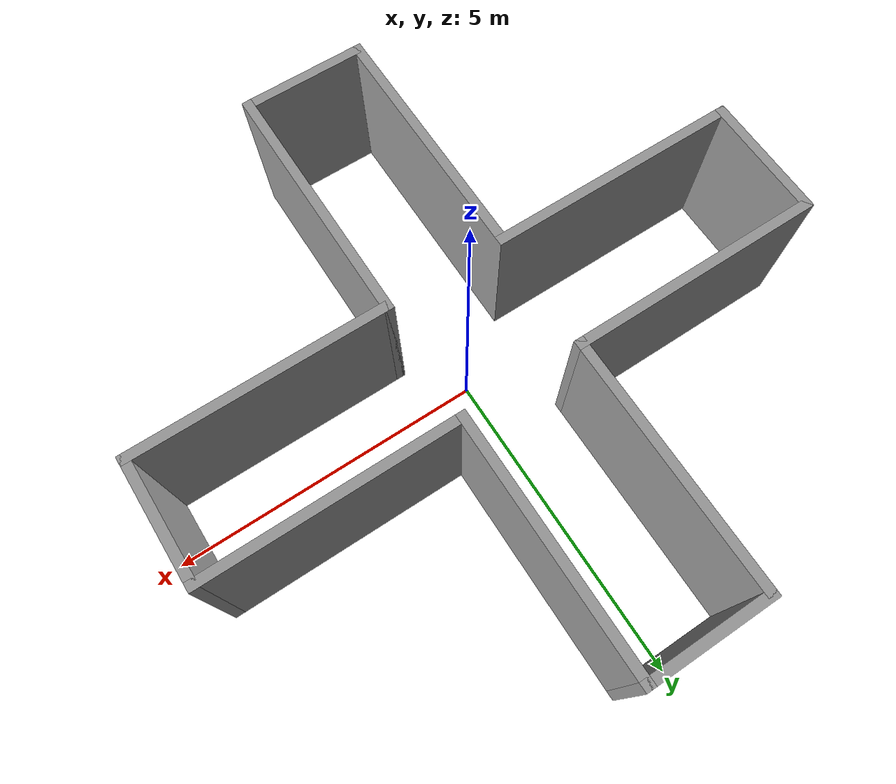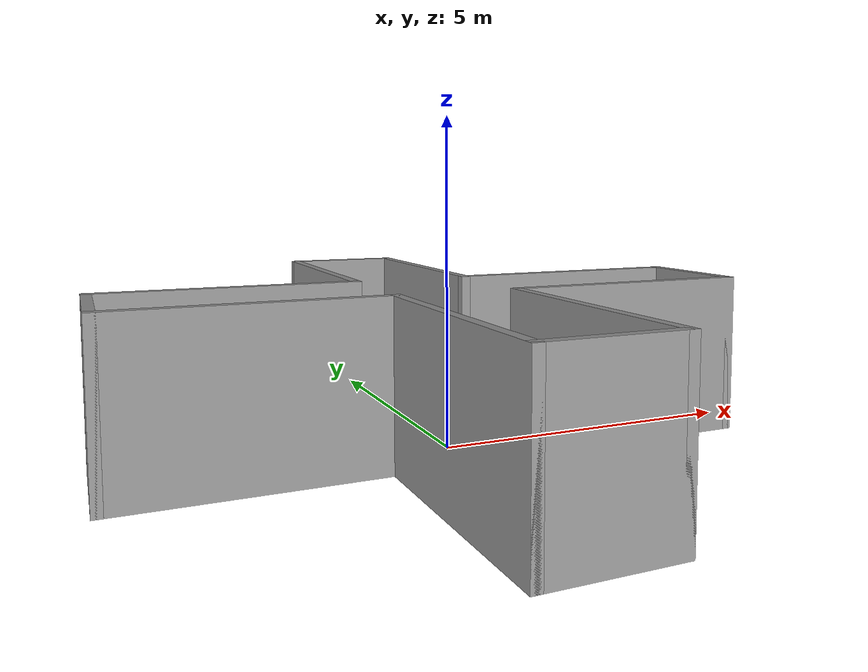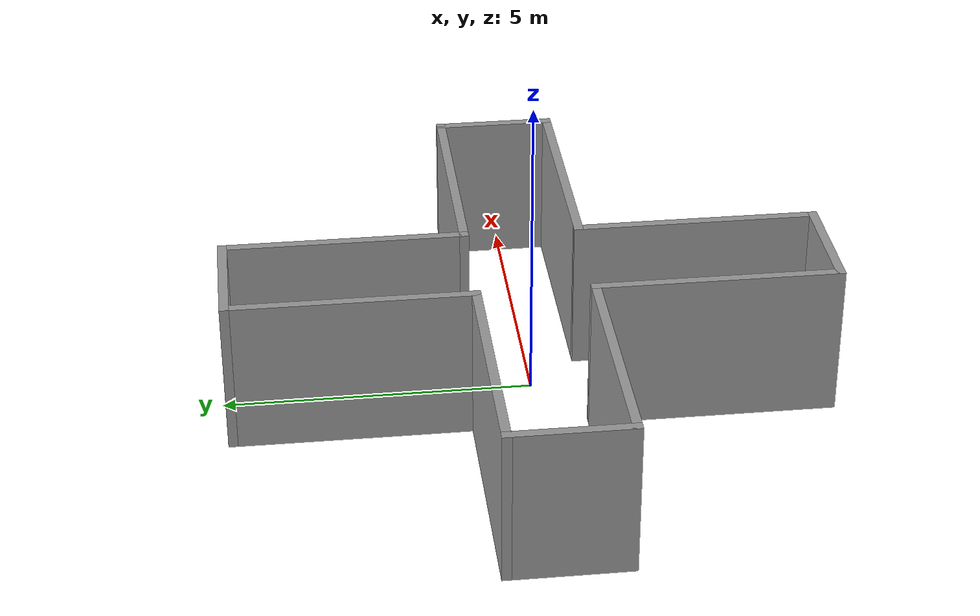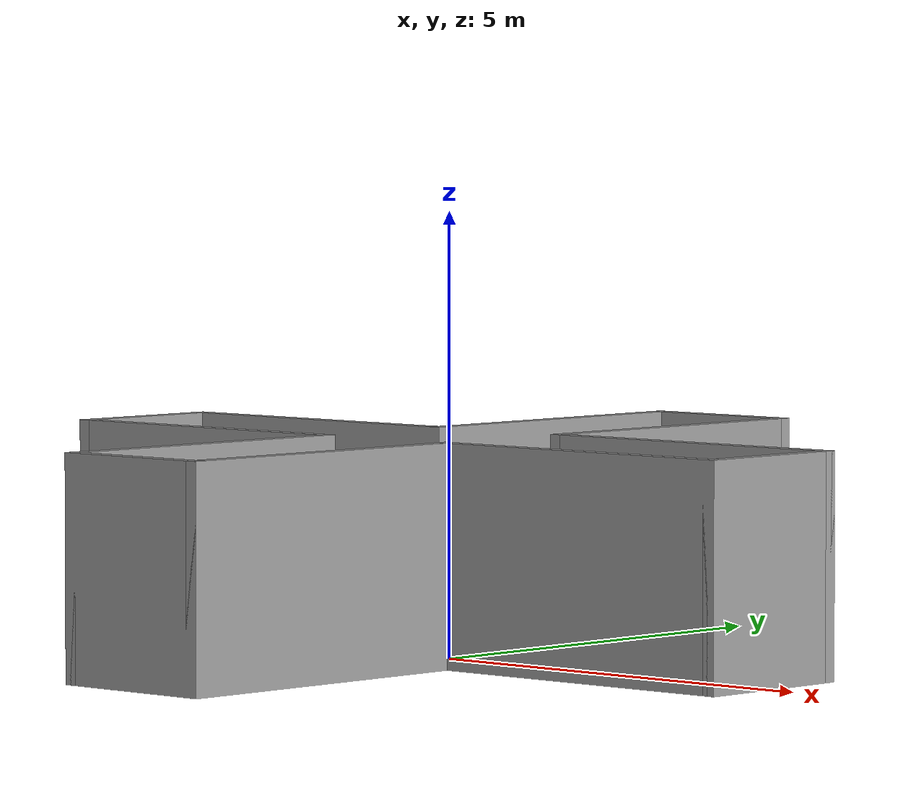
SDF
<?xml version='1.0'?>
<sdf version='1.7'>
  <model name='xcorridor'>
    <pose>-0.185 0.085 0 0 -0 0</pose>
    <link name='Wall_10'>
      <collision name='Wall_10_Collision'>
        <geometry>
          <box>
            <size>4 0.15 2.5</size>
          </box>
        </geometry>
        <pose>0 0 1.25 0 -0 0</pose>
      </collision>
      <visual name='Wall_10_Visual'>
        <pose>0 0 1.25 0 -0 0</pose>
        <geometry>
          <box>
            <size>4 0.15 2.5</size>
          </box>
        </geometry>
        <material>
          <script>
            <uri>file://media/materials/scripts/gazebo.material</uri>
            <name>Gazebo/Grey</name>
          </script>
          <ambient>1 1 1 1</ambient>
        </material>
        <meta>
          <layer>0</layer>
        </meta>
      </visual>
      <pose>0.925 2.85 0 0 -0 1.5708</pose>
    </link>
    <link name='Wall_13'>
      <collision name='Wall_13_Collision'>
        <geometry>
          <box>
            <size>2 0.15 2.5</size>
          </box>
        </geometry>
        <pose>0 0 1.25 0 -0 0</pose>
      </collision>
      <visual name='Wall_13_Visual'>
        <pose>0 0 1.25 0 -0 0</pose>
        <geometry>
          <box>
            <size>2 0.15 2.5</size>
          </box>
        </geometry>
        <material>
          <script>
            <uri>file://media/materials/scripts/gazebo.material</uri>
            <name>Gazebo/Grey</name>
          </script>
          <ambient>1 1 1 1</ambient>
        </material>
        <meta>
          <layer>0</layer>
        </meta>
      </visual>
      <pose>-0 4.775 0 0 -0 3.14159</pose>
    </link>
    <link name='Wall_14'>
      <collision name='Wall_14_Collision'>
        <geometry>
          <box>
            <size>4 0.15 2.5</size>
          </box>
        </geometry>
        <pose>0 0 1.25 0 -0 0</pose>
      </collision>
      <visual name='Wall_14_Visual'>
        <pose>0 0 1.25 0 -0 0</pose>
        <geometry>
          <box>
            <size>4 0.15 2.5</size>
          </box>
        </geometry>
        <material>
          <script>
            <uri>file://media/materials/scripts/gazebo.material</uri>
            <name>Gazebo/Grey</name>
          </script>
          <ambient>1 1 1 1</ambient>
        </material>
        <meta>
          <layer>0</layer>
        </meta>
      </visual>
      <pose>-0.925 2.85 0 0 -0 -1.5708</pose>
    </link>
    <link name='Wall_15'>
      <collision name='Wall_15_Collision'>
        <geometry>
          <box>
            <size>4 0.15 2.5</size>
          </box>
        </geometry>
        <pose>0 0 1.25 0 -0 0</pose>
      </collision>
      <visual name='Wall_15_Visual'>
        <pose>0 0 1.25 0 -0 0</pose>
        <geometry>
          <box>
            <size>4 0.15 2.5</size>
          </box>
        </geometry>
        <material>
          <script>
            <uri>file://media/materials/scripts/gazebo.material</uri>
            <name>Gazebo/Grey</name>
          </script>
          <ambient>1 1 1 1</ambient>
        </material>
        <meta>
          <layer>0</layer>
        </meta>
      </visual>
      <pose>-2.85 0.925 0 0 -0 3.14159</pose>
    </link>
    <link name='Wall_16'>
      <collision name='Wall_16_Collision'>
        <geometry>
          <box>
            <size>2 0.15 2.5</size>
          </box>
        </geometry>
        <pose>0 0 1.25 0 -0 0</pose>
      </collision>
      <visual name='Wall_16_Visual'>
        <pose>0 0 1.25 0 -0 0</pose>
        <geometry>
          <box>
            <size>2 0.15 2.5</size>
          </box>
        </geometry>
        <material>
          <script>
            <uri>file://media/materials/scripts/gazebo.material</uri>
            <name>Gazebo/Grey</name>
          </script>
          <ambient>1 1 1 1</ambient>
        </material>
        <meta>
          <layer>0</layer>
        </meta>
      </visual>
      <pose>-4.775 -0 0 0 -0 -1.5708</pose>
    </link>
    <link name='Wall_17'>
      <collision name='Wall_17_Collision'>
        <geometry>
          <box>
            <size>4 0.15 2.5</size>
          </box>
        </geometry>
        <pose>0 0 1.25 0 -0 0</pose>
      </collision>
      <visual name='Wall_17_Visual'>
        <pose>0 0 1.25 0 -0 0</pose>
        <geometry>
          <box>
            <size>4 0.15 2.5</size>
          </box>
        </geometry>
        <material>
          <script>
            <uri>file://media/materials/scripts/gazebo.material</uri>
            <name>Gazebo/Grey</name>
          </script>
          <ambient>1 1 1 1</ambient>
        </material>
        <meta>
          <layer>0</layer>
        </meta>
      </visual>
      <pose>-2.85 -0.925 0 0 -0 0</pose>
    </link>
    <link name='Wall_19'>
      <collision name='Wall_19_Collision'>
        <geometry>
          <box>
            <size>4 0.15 2.5</size>
          </box>
        </geometry>
        <pose>0 0 1.25 0 -0 0</pose>
      </collision>
      <visual name='Wall_19_Visual'>
        <pose>0 0 1.25 0 -0 0</pose>
        <geometry>
          <box>
            <size>4 0.15 2.5</size>
          </box>
        </geometry>
        <material>
          <script>
            <uri>file://media/materials/scripts/gazebo.material</uri>
            <name>Gazebo/Grey</name>
          </script>
          <ambient>1 1 1 1</ambient>
        </material>
        <meta>
          <layer>0</layer>
        </meta>
      </visual>
      <pose>-0.925 -2.85 0 0 -0 -1.5708</pose>
    </link>
    <link name='Wall_20'>
      <collision name='Wall_20_Collision'>
        <geometry>
          <box>
            <size>2 0.15 2.5</size>
          </box>
        </geometry>
        <pose>0 0 1.25 0 -0 0</pose>
      </collision>
      <visual name='Wall_20_Visual'>
        <pose>0 0 1.25 0 -0 0</pose>
        <geometry>
          <box>
            <size>2 0.15 2.5</size>
          </box>
        </geometry>
        <material>
          <script>
            <uri>file://media/materials/scripts/gazebo.material</uri>
            <name>Gazebo/Grey</name>
          </script>
          <ambient>1 1 1 1</ambient>
        </material>
        <meta>
          <layer>0</layer>
        </meta>
      </visual>
      <pose>-0 -4.775 0 0 -0 0</pose>
    </link>
    <link name='Wall_21'>
      <collision name='Wall_21_Collision'>
        <geometry>
          <box>
            <size>4 0.15 2.5</size>
          </box>
        </geometry>
        <pose>0 0 1.25 0 -0 0</pose>
      </collision>
      <visual name='Wall_21_Visual'>
        <pose>0 0 1.25 0 -0 0</pose>
        <geometry>
          <box>
            <size>4 0.15 2.5</size>
          </box>
        </geometry>
        <material>
          <script>
            <uri>file://media/materials/scripts/gazebo.material</uri>
            <name>Gazebo/Grey</name>
          </script>
          <ambient>1 1 1 1</ambient>
        </material>
        <meta>
          <layer>0</layer>
        </meta>
      </visual>
      <pose>0.925 -2.85 0 0 -0 1.5708</pose>
    </link>
    <link name='Wall_6'>
      <collision name='Wall_6_Collision'>
        <geometry>
          <box>
            <size>4 0.15 2.5</size>
          </box>
        </geometry>
        <pose>0 0 1.25 0 -0 0</pose>
      </collision>
      <visual name='Wall_6_Visual'>
        <pose>0 0 1.25 0 -0 0</pose>
        <geometry>
          <box>
            <size>4 0.15 2.5</size>
          </box>
        </geometry>
        <material>
          <script>
            <uri>file://media/materials/scripts/gazebo.material</uri>
            <name>Gazebo/Grey</name>
          </script>
          <ambient>1 1 1 1</ambient>
        </material>
        <meta>
          <layer>0</layer>
        </meta>
      </visual>
      <pose>2.85 -0.925 0 0 -0 0</pose>
    </link>
    <link name='Wall_7'>
      <collision name='Wall_7_Collision'>
        <geometry>
          <box>
            <size>2 0.15 2.5</size>
          </box>
        </geometry>
        <pose>0 0 1.25 0 -0 0</pose>
      </collision>
      <visual name='Wall_7_Visual'>
        <pose>0 0 1.25 0 -0 0</pose>
        <geometry>
          <box>
            <size>2 0.15 2.5</size>
          </box>
        </geometry>
        <material>
          <script>
            <uri>file://media/materials/scripts/gazebo.material</uri>
            <name>Gazebo/Grey</name>
          </script>
          <ambient>1 1 1 1</ambient>
        </material>
        <meta>
          <layer>0</layer>
        </meta>
      </visual>
      <pose>4.775 -0 0 0 -0 1.5708</pose>
    </link>
    <link name='Wall_8'>
      <collision name='Wall_8_Collision'>
        <geometry>
          <box>
            <size>4 0.15 2.5</size>
          </box>
        </geometry>
        <pose>0 0 1.25 0 -0 0</pose>
      </collision>
      <visual name='Wall_8_Visual'>
        <pose>0 0 1.25 0 -0 0</pose>
        <geometry>
          <box>
            <size>4 0.15 2.5</size>
          </box>
        </geometry>
        <material>
          <script>
            <uri>file://media/materials/scripts/gazebo.material</uri>
            <name>Gazebo/Grey</name>
          </script>
          <ambient>1 1 1 1</ambient>
        </material>
        <meta>
          <layer>0</layer>
        </meta>
      </visual>
      <pose>2.85 0.925 0 0 -0 3.14159</pose>
    </link>
    <static>1</static>
  </model>
</sdf>
